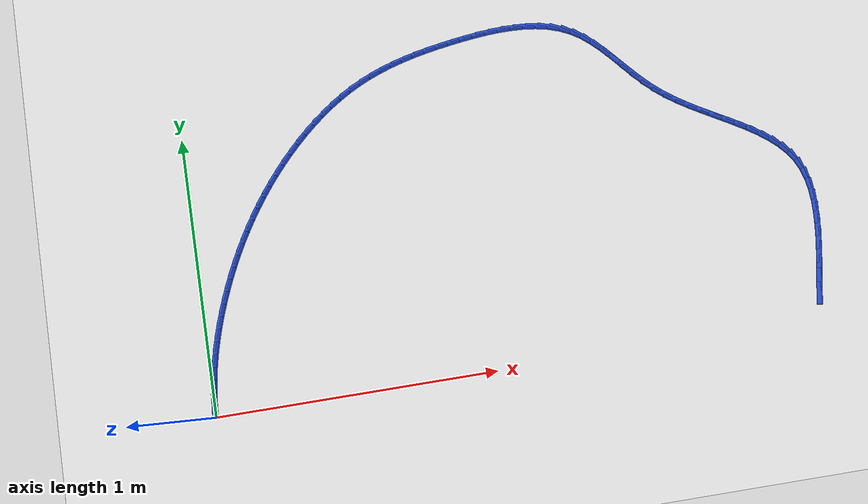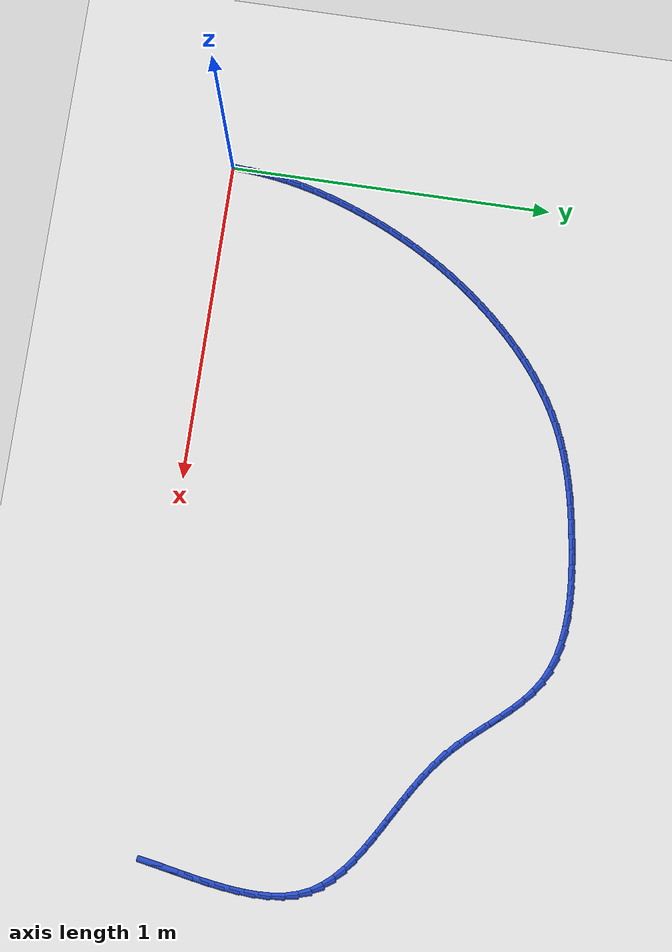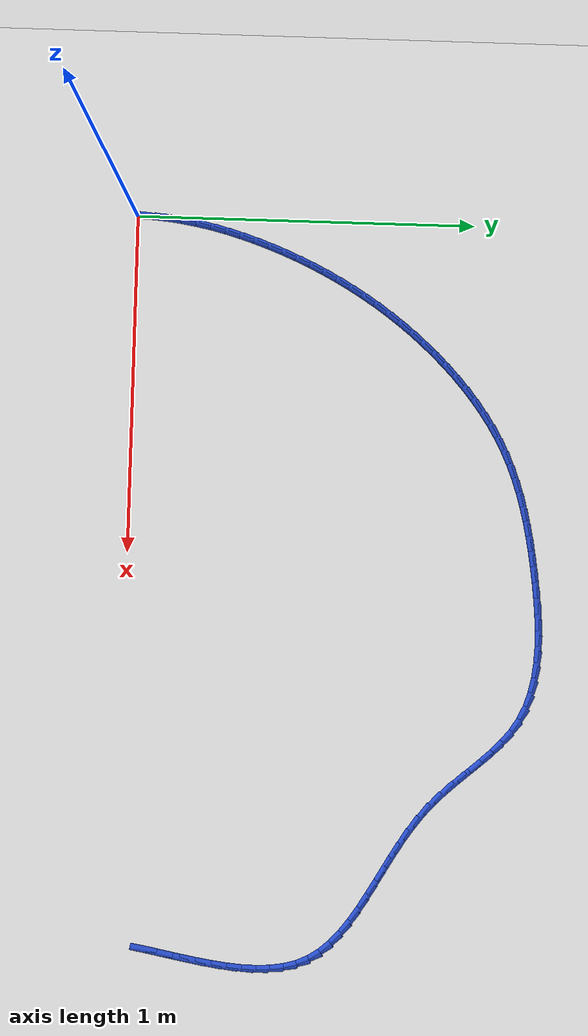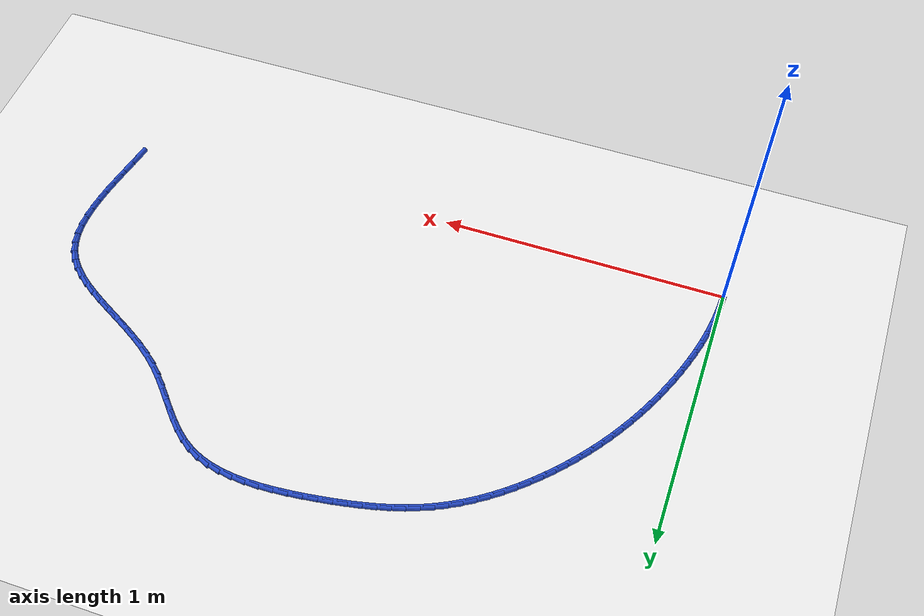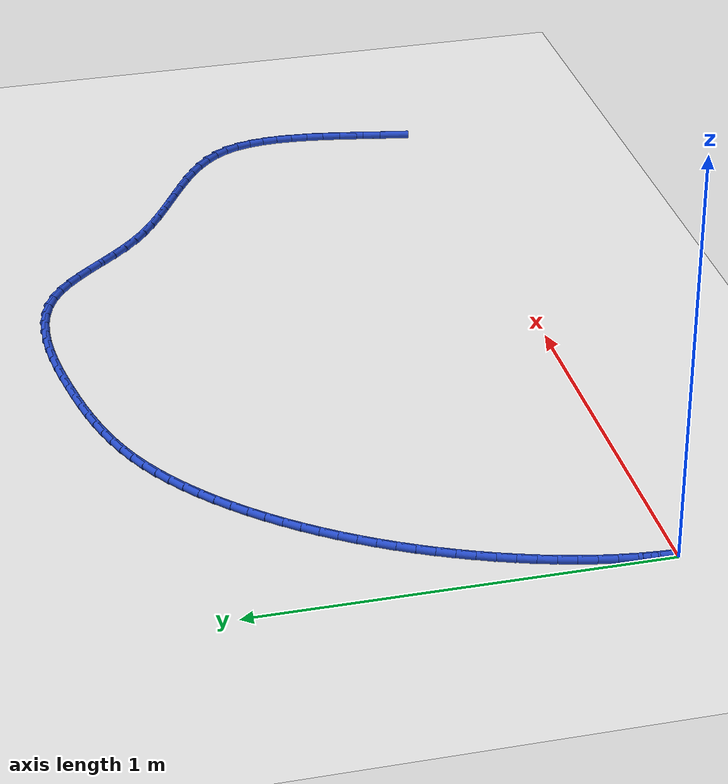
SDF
<sdf version="1.6">
 <world name="default">
  <model name="ground_plane">
   <static>1</static>
   <link name="link">
    <collision name="collision">
     <geometry><plane><normal>0 0 1</normal><size>100 100</size></plane></geometry>
     <surface><friction><ode><mu>100</mu><mu2>50</mu2></ode></friction></surface>
    </collision>
    <visual name="visual">
     <cast_shadows>0</cast_shadows>
     <geometry><plane><normal>0 0 1</normal><size>100 100</size></plane></geometry>
     <material>
      <script><uri>file://media/materials/scripts/gazebo.material</uri><name>Gazebo/WhiteGlow</name></script>
     </material>
    </visual>
   </link>
  </model>
  <model name="line">
   <link name="link_1">
    <pose>0.0018986274783184306 0.045270862564657524 0.01 0 1.57 1.4842349211723058</pose>
    <collision name="collision">
     <geometry><cylinder><radius>0.01</radius><length>0.08</length></cylinder></geometry>
    </collision>
    <visual name="visual">
     <material>
      <script><name>Gazebo/Blue</name><uri>file://media/materials/scripts/gazebo.material</uri></script>
     </material>
     <geometry><cylinder><radius>0.01</radius><length>0.08</length></cylinder></geometry>
    </visual>
   </link>
   <link name="link_2">
    <pose>0.005796107628394718 0.090183959916255 0.01 0 1.57 1.4415043445787512</pose>
    <collision name="collision">
     <geometry><cylinder><radius>0.01</radius><length>0.08</length></cylinder></geometry>
    </collision>
    <visual name="visual">
     <material>
      <script><name>Gazebo/Blue</name><uri>file://media/materials/scripts/gazebo.material</uri></script>
     </material>
     <geometry><cylinder><radius>0.01</radius><length>0.08</length></cylinder></geometry>
    </visual>
   </link>
   <link name="link_3">
    <pose>0.01158838810931956 0.13473404697442215 0.01 0 1.57 1.400820167385126</pose>
    <collision name="collision">
     <geometry><cylinder><radius>0.01</radius><length>0.08</length></cylinder></geometry>
    </collision>
    <visual name="visual">
     <material>
      <script><name>Gazebo/Blue</name><uri>file://media/materials/scripts/gazebo.material</uri></script>
     </material>
     <geometry><cylinder><radius>0.01</radius><length>0.08</length></cylinder></geometry>
    </visual>
   </link>
   <link name="link_4">
    <pose>0.01917141658018367 0.1789158786587886 0.01 0 1.57 1.3622748014016555</pose>
    <collision name="collision">
     <geometry><cylinder><radius>0.01</radius><length>0.08</length></cylinder></geometry>
    </collision>
    <visual name="visual">
     <material>
      <script><name>Gazebo/Blue</name><uri>file://media/materials/scripts/gazebo.material</uri></script>
     </material>
     <geometry><cylinder><radius>0.01</radius><length>0.08</length></cylinder></geometry>
    </visual>
   </link>
   <link name="link_5">
    <pose>0.028441140700077774 0.22272420988898411 0.01 0 1.57 1.325926651619005</pose>
    <collision name="collision">
     <geometry><cylinder><radius>0.01</radius><length>0.08</length></cylinder></geometry>
    </collision>
    <visual name="visual">
     <material>
      <script><name>Gazebo/Blue</name><uri>file://media/materials/scripts/gazebo.material</uri></script>
     </material>
     <geometry><cylinder><radius>0.01</radius><length>0.08</length></cylinder></geometry>
    </visual>
   </link>
   <link name="link_6">
    <pose>0.039293508128092576 0.26615379558463836 0.01 0 1.57 1.2918048528921524</pose>
    <collision name="collision">
     <geometry><cylinder><radius>0.01</radius><length>0.08</length></cylinder></geometry>
    </collision>
    <visual name="visual">
     <material>
      <script><name>Gazebo/Blue</name><uri>file://media/materials/scripts/gazebo.material</uri></script>
     </material>
     <geometry><cylinder><radius>0.01</radius><length>0.08</length></cylinder></geometry>
    </visual>
   </link>
   <link name="link_7">
    <pose>0.051624466523318806 0.30919939066538094 0.01 0 1.57 1.2599143963918624</pose>
    <collision name="collision">
     <geometry><cylinder><radius>0.01</radius><length>0.08</length></cylinder></geometry>
    </collision>
    <visual name="visual">
     <material>
      <script><name>Gazebo/Blue</name><uri>file://media/materials/scripts/gazebo.material</uri></script>
     </material>
     <geometry><cylinder><radius>0.01</radius><length>0.08</length></cylinder></geometry>
    </visual>
   </link>
   <link name="link_8">
    <pose>0.06532996354484717 0.3518557500508417 0.01 0 1.57 1.2302329889675874</pose>
    <collision name="collision">
     <geometry><cylinder><radius>0.01</radius><length>0.08</length></cylinder></geometry>
    </collision>
    <visual name="visual">
     <material>
      <script><name>Gazebo/Blue</name><uri>file://media/materials/scripts/gazebo.material</uri></script>
     </material>
     <geometry><cylinder><radius>0.01</radius><length>0.08</length></cylinder></geometry>
    </visual>
   </link>
   <link name="link_9">
    <pose>0.080306294159341 0.394117497454117 0.01 0 1.57 1.201915558746725</pose>
    <collision name="collision">
     <geometry><cylinder><radius>0.01</radius><length>0.08</length></cylinder></geometry>
    </collision>
    <visual name="visual">
     <material>
      <script><name>Gazebo/Blue</name><uri>file://media/materials/scripts/gazebo.material</uri></script>
     </material>
     <geometry><cylinder><radius>0.01</radius><length>0.08</length></cylinder></geometry>
    </visual>
   </link>
   <link name="link_10">
    <pose>0.09648404263138836 0.43596630271035763 0.01 0 1.57 1.1734323717533908</pose>
    <collision name="collision">
     <geometry><cylinder><radius>0.01</radius><length>0.08</length></cylinder></geometry>
    </collision>
    <visual name="visual">
     <material>
      <script><name>Gazebo/Blue</name><uri>file://media/materials/scripts/gazebo.material</uri></script>
     </material>
     <geometry><cylinder><radius>0.01</radius><length>0.08</length></cylinder></geometry>
    </visual>
   </link>
   <link name="link_11">
    <pose>0.1138565870593402 0.4773601132775439 0.01 0 1.57 1.1445915852036095</pose>
    <collision name="collision">
     <geometry><cylinder><radius>0.01</radius><length>0.08</length></cylinder></geometry>
    </collision>
    <visual name="visual">
     <material>
      <script><name>Gazebo/Blue</name><uri>file://media/materials/scripts/gazebo.material</uri></script>
     </material>
     <geometry><cylinder><radius>0.01</radius><length>0.08</length></cylinder></geometry>
    </visual>
   </link>
   <link name="link_12">
    <pose>0.13242401652353475 0.5182543413257723 0.01 0 1.57 1.1153630447372038</pose>
    <collision name="collision">
     <geometry><cylinder><radius>0.01</radius><length>0.08</length></cylinder></geometry>
    </collision>
    <visual name="visual">
     <material>
      <script><name>Gazebo/Blue</name><uri>file://media/materials/scripts/gazebo.material</uri></script>
     </material>
     <geometry><cylinder><radius>0.01</radius><length>0.08</length></cylinder></geometry>
    </visual>
   </link>
   <link name="link_13">
    <pose>0.15218642010431016 0.558604399025139 0.01 0 1.57 1.0857185533105422</pose>
    <collision name="collision">
     <geometry><cylinder><radius>0.01</radius><length>0.08</length></cylinder></geometry>
    </collision>
    <visual name="visual">
     <material>
      <script><name>Gazebo/Blue</name><uri>file://media/materials/scripts/gazebo.material</uri></script>
     </material>
     <geometry><cylinder><radius>0.01</radius><length>0.08</length></cylinder></geometry>
    </visual>
   </link>
   <link name="link_14">
    <pose>0.17314388688200485 0.5983656985457407 0.01 0 1.57 1.0556321395603914</pose>
    <collision name="collision">
     <geometry><cylinder><radius>0.01</radius><length>0.08</length></cylinder></geometry>
    </collision>
    <visual name="visual">
     <material>
      <script><name>Gazebo/Blue</name><uri>file://media/materials/scripts/gazebo.material</uri></script>
     </material>
     <geometry><cylinder><radius>0.01</radius><length>0.08</length></cylinder></geometry>
    </visual>
   </link>
   <link name="link_15">
    <pose>0.1952965059369569 0.6374936520576736 0.01 0 1.57 1.0250803586333848</pose>
    <collision name="collision">
     <geometry><cylinder><radius>0.01</radius><length>0.08</length></cylinder></geometry>
    </collision>
    <visual name="visual">
     <material>
      <script><name>Gazebo/Blue</name><uri>file://media/materials/scripts/gazebo.material</uri></script>
     </material>
     <geometry><cylinder><radius>0.01</radius><length>0.08</length></cylinder></geometry>
    </visual>
   </link>
   <link name="link_16">
    <pose>0.21864436634950482 0.6759436717310348 0.01 0 1.57 0.9940426239044867</pose>
    <collision name="collision">
     <geometry><cylinder><radius>0.01</radius><length>0.08</length></cylinder></geometry>
    </collision>
    <visual name="visual">
     <material>
      <script><name>Gazebo/Blue</name><uri>file://media/materials/scripts/gazebo.material</uri></script>
     </material>
     <geometry><cylinder><radius>0.01</radius><length>0.08</length></cylinder></geometry>
    </visual>
   </link>
   <link name="link_17">
    <pose>0.24318755719998664 0.7136711697359202 0.01 0 1.57 0.9625015665755179</pose>
    <collision name="collision">
     <geometry><cylinder><radius>0.01</radius><length>0.08</length></cylinder></geometry>
    </collision>
    <visual name="visual">
     <material>
      <script><name>Gazebo/Blue</name><uri>file://media/materials/scripts/gazebo.material</uri></script>
     </material>
     <geometry><cylinder><radius>0.01</radius><length>0.08</length></cylinder></geometry>
    </visual>
   </link>
   <link name="link_18">
    <pose>0.26892616756874066 0.7506315582424266 0.01 0 1.57 0.9304434184569393</pose>
    <collision name="collision">
     <geometry><cylinder><radius>0.01</radius><length>0.08</length></cylinder></geometry>
    </collision>
    <visual name="visual">
     <material>
      <script><name>Gazebo/Blue</name><uri>file://media/materials/scripts/gazebo.material</uri></script>
     </material>
     <geometry><cylinder><radius>0.01</radius><length>0.08</length></cylinder></geometry>
    </visual>
   </link>
   <link name="link_19">
    <pose>0.2958602865361052 0.7867802494206502 0.01 0 1.57 0.8978584113109714</pose>
    <collision name="collision">
     <geometry><cylinder><radius>0.01</radius><length>0.08</length></cylinder></geometry>
    </collision>
    <visual name="visual">
     <material>
      <script><name>Gazebo/Blue</name><uri>file://media/materials/scripts/gazebo.material</uri></script>
     </material>
     <geometry><cylinder><radius>0.01</radius><length>0.08</length></cylinder></geometry>
    </visual>
   </link>
   <link name="link_20">
    <pose>0.3239900031824186 0.8220726554406879 0.01 0 1.57 0.8647411840159512</pose>
    <collision name="collision">
     <geometry><cylinder><radius>0.01</radius><length>0.08</length></cylinder></geometry>
    </collision>
    <visual name="visual">
     <material>
      <script><name>Gazebo/Blue</name><uri>file://media/materials/scripts/gazebo.material</uri></script>
     </material>
     <geometry><cylinder><radius>0.01</radius><length>0.08</length></cylinder></geometry>
    </visual>
   </link>
   <link name="link_21">
    <pose>0.35331540658801897 0.8564641884726361 0.01 0 1.57 0.8310911865787765</pose>
    <collision name="collision">
     <geometry><cylinder><radius>0.01</radius><length>0.08</length></cylinder></geometry>
    </collision>
    <visual name="visual">
     <material>
      <script><name>Gazebo/Blue</name><uri>file://media/materials/scripts/gazebo.material</uri></script>
     </material>
     <geometry><cylinder><radius>0.01</radius><length>0.08</length></cylinder></geometry>
    </visual>
   </link>
   <link name="link_22">
    <pose>0.38383658583324465 0.889910260686591 0.01 0 1.57 0.7966848038473127</pose>
    <collision name="collision">
     <geometry><cylinder><radius>0.01</radius><length>0.08</length></cylinder></geometry>
    </collision>
    <visual name="visual">
     <material>
      <script><name>Gazebo/Blue</name><uri>file://media/materials/scripts/gazebo.material</uri></script>
     </material>
     <geometry><cylinder><radius>0.01</radius><length>0.08</length></cylinder></geometry>
    </visual>
   </link>
   <link name="link_23">
    <pose>0.41554763064454986 0.9223453303728348 0.01 0 1.57 0.7604444711862371</pose>
    <collision name="collision">
     <geometry><cylinder><radius>0.01</radius><length>0.08</length></cylinder></geometry>
    </collision>
    <visual name="visual">
     <material>
      <script><name>Gazebo/Blue</name><uri>file://media/materials/scripts/gazebo.material</uri></script>
     </material>
     <geometry><cylinder><radius>0.01</radius><length>0.08</length></cylinder></geometry>
    </visual>
   </link>
   <link name="link_24">
    <pose>0.4484168244058946 0.953613722282348 0.01 0 1.57 0.7218498556387832</pose>
    <collision name="collision">
     <geometry><cylinder><radius>0.01</radius><length>0.08</length></cylinder></geometry>
    </collision>
    <visual name="visual">
     <material>
      <script><name>Gazebo/Blue</name><uri>file://media/materials/scripts/gazebo.material</uri></script>
     </material>
     <geometry><cylinder><radius>0.01</radius><length>0.08</length></cylinder></geometry>
    </visual>
   </link>
   <link name="link_25">
    <pose>0.4824055131075488 0.9835355310045948 0.01 0 1.57 0.6806194166021386</pose>
    <collision name="collision">
     <geometry><cylinder><radius>0.01</radius><length>0.08</length></cylinder></geometry>
    </collision>
    <visual name="visual">
     <material>
      <script><name>Gazebo/Blue</name><uri>file://media/materials/scripts/gazebo.material</uri></script>
     </material>
     <geometry><cylinder><radius>0.01</radius><length>0.08</length></cylinder></geometry>
    </visual>
   </link>
   <link name="link_26">
    <pose>0.5174750426480814 1.0119308508087546 0.01 0 1.57 0.6364662482229534</pose>
    <collision name="collision">
     <geometry><cylinder><radius>0.01</radius><length>0.08</length></cylinder></geometry>
    </collision>
    <visual name="visual">
     <material>
      <script><name>Gazebo/Blue</name><uri>file://media/materials/scripts/gazebo.material</uri></script>
     </material>
     <geometry><cylinder><radius>0.01</radius><length>0.08</length></cylinder></geometry>
    </visual>
   </link>
   <link name="link_27">
    <pose>0.5535867589260608 1.0386197759640066 0.01 0 1.57 0.5891046559166444</pose>
    <collision name="collision">
     <geometry><cylinder><radius>0.01</radius><length>0.08</length></cylinder></geometry>
    </collision>
    <visual name="visual">
     <material>
      <script><name>Gazebo/Blue</name><uri>file://media/materials/scripts/gazebo.material</uri></script>
     </material>
     <geometry><cylinder><radius>0.01</radius><length>0.08</length></cylinder></geometry>
    </visual>
   </link>
   <link name="link_28">
    <pose>0.5907020078400552 1.0634224007395292 0.01 0 1.57 0.5382606959549727</pose>
    <collision name="collision">
     <geometry><cylinder><radius>0.01</radius><length>0.08</length></cylinder></geometry>
    </collision>
    <visual name="visual">
     <material>
      <script><name>Gazebo/Blue</name><uri>file://media/materials/scripts/gazebo.material</uri></script>
     </material>
     <geometry><cylinder><radius>0.01</radius><length>0.08</length></cylinder></geometry>
    </visual>
   </link>
   <link name="link_29">
    <pose>0.6287821352886335 1.0861588194045018 0.01 0 1.57 0.4837081633255312</pose>
    <collision name="collision">
     <geometry><cylinder><radius>0.01</radius><length>0.08</length></cylinder></geometry>
    </collision>
    <visual name="visual">
     <material>
      <script><name>Gazebo/Blue</name><uri>file://media/materials/scripts/gazebo.material</uri></script>
     </material>
     <geometry><cylinder><radius>0.01</radius><length>0.08</length></cylinder></geometry>
    </visual>
   </link>
   <link name="link_30">
    <pose>0.6677885769691463 1.1066501978492853 0.01 0 1.57 0.4276677276523153</pose>
    <collision name="collision">
     <geometry><cylinder><radius>0.01</radius><length>0.08</length></cylinder></geometry>
    </collision>
    <visual name="visual">
     <material>
      <script><name>Gazebo/Blue</name><uri>file://media/materials/scripts/gazebo.material</uri></script>
     </material>
     <geometry><cylinder><radius>0.01</radius><length>0.08</length></cylinder></geometry>
    </visual>
   </link>
   <link name="link_31">
    <pose>0.7076929026458838 1.1248386376881985 0.01 0 1.57 0.3750144893814631</pose>
    <collision name="collision">
     <geometry><cylinder><radius>0.01</radius><length>0.08</length></cylinder></geometry>
    </collision>
    <visual name="visual">
     <material>
      <script><name>Gazebo/Blue</name><uri>file://media/materials/scripts/gazebo.material</uri></script>
     </material>
     <geometry><cylinder><radius>0.01</radius><length>0.08</length></cylinder></geometry>
    </visual>
   </link>
   <link name="link_32">
    <pose>0.7484859822427457 1.140896560582712 0.01 0 1.57 0.3267963278468307</pose>
    <collision name="collision">
     <geometry><cylinder><radius>0.01</radius><length>0.08</length></cylinder></geometry>
    </collision>
    <visual name="visual">
     <material>
      <script><name>Gazebo/Blue</name><uri>file://media/materials/scripts/gazebo.material</uri></script>
     </material>
     <geometry><cylinder><radius>0.01</radius><length>0.08</length></cylinder></geometry>
    </visual>
   </link>
   <link name="link_33">
    <pose>0.7901608507896076 1.1550222256650946 0.01 0 1.57 0.28338988487106853</pose>
    <collision name="collision">
     <geometry><cylinder><radius>0.01</radius><length>0.08</length></cylinder></geometry>
    </collision>
    <visual name="visual">
     <material>
      <script><name>Gazebo/Blue</name><uri>file://media/materials/scripts/gazebo.material</uri></script>
     </material>
     <geometry><cylinder><radius>0.01</radius><length>0.08</length></cylinder></geometry>
    </visual>
   </link>
   <link name="link_34">
    <pose>0.8327105433163452 1.1674138920676156 0.01 0 1.57 0.2450120236223205</pose>
    <collision name="collision">
     <geometry><cylinder><radius>0.01</radius><length>0.08</length></cylinder></geometry>
    </collision>
    <visual name="visual">
     <material>
      <script><name>Gazebo/Blue</name><uri>file://media/materials/scripts/gazebo.material</uri></script>
     </material>
     <geometry><cylinder><radius>0.01</radius><length>0.08</length></cylinder></geometry>
    </visual>
   </link>
   <link name="link_35">
    <pose>0.8761280948528342 1.1782698189225438 0.01 0 1.57 0.2117455207977764</pose>
    <collision name="collision">
     <geometry><cylinder><radius>0.01</radius><length>0.08</length></cylinder></geometry>
    </collision>
    <visual name="visual">
     <material>
      <script><name>Gazebo/Blue</name><uri>file://media/materials/scripts/gazebo.material</uri></script>
     </material>
     <geometry><cylinder><radius>0.01</radius><length>0.08</length></cylinder></geometry>
    </visual>
   </link>
   <link name="link_36">
    <pose>0.9204065404289501 1.1877882653621483 0.01 0 1.57 0.18356874632697723</pose>
    <collision name="collision">
     <geometry><cylinder><radius>0.01</radius><length>0.08</length></cylinder></geometry>
    </collision>
    <visual name="visual">
     <material>
      <script><name>Gazebo/Blue</name><uri>file://media/materials/scripts/gazebo.material</uri></script>
     </material>
     <geometry><cylinder><radius>0.01</radius><length>0.08</length></cylinder></geometry>
    </visual>
   </link>
   <link name="link_37">
    <pose>0.9655389150745686 1.1961674905186972 0.01 0 1.57 0.16038453201115208</pose>
    <collision name="collision">
     <geometry><cylinder><radius>0.01</radius><length>0.08</length></cylinder></geometry>
    </collision>
    <visual name="visual">
     <material>
      <script><name>Gazebo/Blue</name><uri>file://media/materials/scripts/gazebo.material</uri></script>
     </material>
     <geometry><cylinder><radius>0.01</radius><length>0.08</length></cylinder></geometry>
    </visual>
   </link>
   <link name="link_38">
    <pose>1.011518253819565 1.2036057535244598 0.01 0 1.57 0.14166314754316453</pose>
    <collision name="collision">
     <geometry><cylinder><radius>0.01</radius><length>0.08</length></cylinder></geometry>
    </collision>
    <visual name="visual">
     <material>
      <script><name>Gazebo/Blue</name><uri>file://media/materials/scripts/gazebo.material</uri></script>
     </material>
     <geometry><cylinder><radius>0.01</radius><length>0.08</length></cylinder></geometry>
    </visual>
   </link>
   <link name="link_39">
    <pose>1.0583256229354534 1.2102813488996835 0.01 0 1.57 0.12074123063330013</pose>
    <collision name="collision">
     <geometry><cylinder><radius>0.01</radius><length>0.08</length></cylinder></geometry>
    </collision>
    <visual name="visual">
     <material>
      <script><name>Gazebo/Blue</name><uri>file://media/materials/scripts/gazebo.material</uri></script>
     </material>
     <geometry><cylinder><radius>0.01</radius><length>0.08</length></cylinder></geometry>
    </visual>
   </link>
   <link name="link_40">
    <pose>1.1057391771114726 1.2160341023867947 0.01 0 1.57 0.09185437337763562</pose>
    <collision name="collision">
     <geometry><cylinder><radius>0.01</radius><length>0.08</length></cylinder></geometry>
    </collision>
    <visual name="visual">
     <material>
      <script><name>Gazebo/Blue</name><uri>file://media/materials/scripts/gazebo.material</uri></script>
     </material>
     <geometry><cylinder><radius>0.01</radius><length>0.08</length></cylinder></geometry>
    </visual>
   </link>
   <link name="link_41">
    <pose>1.1533677111331038 1.2204213371771335 0.01 0 1.57 0.054120727202297464</pose>
    <collision name="collision">
     <geometry><cylinder><radius>0.01</radius><length>0.08</length></cylinder></geometry>
    </collision>
    <visual name="visual">
     <material>
      <script><name>Gazebo/Blue</name><uri>file://media/materials/scripts/gazebo.material</uri></script>
     </material>
     <geometry><cylinder><radius>0.01</radius><length>0.08</length></cylinder></geometry>
    </visual>
   </link>
   <link name="link_42">
    <pose>1.2008148301574335 1.2229917198483584 0.01 0 1.57 0.006447565527677258</pose>
    <collision name="collision">
     <geometry><cylinder><radius>0.01</radius><length>0.08</length></cylinder></geometry>
    </collision>
    <visual name="visual">
     <material>
      <script><name>Gazebo/Blue</name><uri>file://media/materials/scripts/gazebo.material</uri></script>
     </material>
     <geometry><cylinder><radius>0.01</radius><length>0.08</length></cylinder></geometry>
    </visual>
   </link>
   <link name="link_43">
    <pose>1.2476841393415485 1.2232939169781274 0.01 0 1.57 -0.05262195616733427</pose>
    <collision name="collision">
     <geometry><cylinder><radius>0.01</radius><length>0.08</length></cylinder></geometry>
    </collision>
    <visual name="visual">
     <material>
      <script><name>Gazebo/Blue</name><uri>file://media/materials/scripts/gazebo.material</uri></script>
     </material>
     <geometry><cylinder><radius>0.01</radius><length>0.08</length></cylinder></geometry>
    </visual>
   </link>
   <link name="link_44">
    <pose>1.2935792438425382 1.220876595144099 0.01 0 1.57 -0.12485498532663875</pose>
    <collision name="collision">
     <geometry><cylinder><radius>0.01</radius><length>0.08</length></cylinder></geometry>
    </collision>
    <visual name="visual">
     <material>
      <script><name>Gazebo/Blue</name><uri>file://media/materials/scripts/gazebo.material</uri></script>
     </material>
     <geometry><cylinder><radius>0.01</radius><length>0.08</length></cylinder></geometry>
    </visual>
   </link>
   <link name="link_45">
    <pose>1.3381037488174883 1.2152884209239316 0.01 0 1.57 -0.2121672224260136</pose>
    <collision name="collision">
     <geometry><cylinder><radius>0.01</radius><length>0.08</length></cylinder></geometry>
    </collision>
    <visual name="visual">
     <material>
      <script><name>Gazebo/Blue</name><uri>file://media/materials/scripts/gazebo.material</uri></script>
     </material>
     <geometry><cylinder><radius>0.01</radius><length>0.08</length></cylinder></geometry>
    </visual>
   </link>
   <link name="link_46">
    <pose>1.3808612594234875 1.2060780608952835 0.01 0 1.57 -0.3162534285574934</pose>
    <collision name="collision">
     <geometry><cylinder><radius>0.01</radius><length>0.08</length></cylinder></geometry>
    </collision>
    <visual name="visual">
     <material>
      <script><name>Gazebo/Blue</name><uri>file://media/materials/scripts/gazebo.material</uri></script>
     </material>
     <geometry><cylinder><radius>0.01</radius><length>0.08</length></cylinder></geometry>
    </visual>
   </link>
   <link name="link_47">
    <pose>1.4214553808176222 1.192794181635813 0.01 0 1.57 -0.43790829810327386</pose>
    <collision name="collision">
     <geometry><cylinder><radius>0.01</radius><length>0.08</length></cylinder></geometry>
    </collision>
    <visual name="visual">
     <material>
      <script><name>Gazebo/Blue</name><uri>file://media/materials/scripts/gazebo.material</uri></script>
     </material>
     <geometry><cylinder><radius>0.01</radius><length>0.08</length></cylinder></geometry>
    </visual>
   </link>
   <link name="link_48">
    <pose>1.4594897181569801 1.1749854497231775 0.01 0 1.57 -0.5723241459038471</pose>
    <collision name="collision">
     <geometry><cylinder><radius>0.01</radius><length>0.08</length></cylinder></geometry>
    </collision>
    <visual name="visual">
     <material>
      <script><name>Gazebo/Blue</name><uri>file://media/materials/scripts/gazebo.material</uri></script>
     </material>
     <geometry><cylinder><radius>0.01</radius><length>0.08</length></cylinder></geometry>
    </visual>
   </link>
   <link name="link_49">
    <pose>1.4946665700119324 1.152322676758436 0.01 0 1.57 -0.6892413904597401</pose>
    <collision name="collision">
     <geometry><cylinder><radius>0.01</radius><length>0.08</length></cylinder></geometry>
    </collision>
    <visual name="visual">
     <material>
      <script><name>Gazebo/Blue</name><uri>file://media/materials/scripts/gazebo.material</uri></script>
     </material>
     <geometry><cylinder><radius>0.01</radius><length>0.08</length></cylinder></geometry>
    </visual>
   </link>
   <link name="link_50">
    <pose>1.5273955115844915 1.1253520146297842 0.01 0 1.57 -0.7748260927825578</pose>
    <collision name="collision">
     <geometry><cylinder><radius>0.01</radius><length>0.08</length></cylinder></geometry>
    </collision>
    <visual name="visual">
     <material>
      <script><name>Gazebo/Blue</name><uri>file://media/materials/scripts/gazebo.material</uri></script>
     </material>
     <geometry><cylinder><radius>0.01</radius><length>0.08</length></cylinder></geometry>
    </visual>
   </link>
   <link name="link_51">
    <pose>1.558394664686706 1.0950014789349503 0.01 0 1.57 -0.8301533373716767</pose>
    <collision name="collision">
     <geometry><cylinder><radius>0.01</radius><length>0.08</length></cylinder></geometry>
    </collision>
    <visual name="visual">
     <material>
      <script><name>Gazebo/Blue</name><uri>file://media/materials/scripts/gazebo.material</uri></script>
     </material>
     <geometry><cylinder><radius>0.01</radius><length>0.08</length></cylinder></geometry>
    </visual>
   </link>
   <link name="link_52">
    <pose>1.5883834342252279 1.0622006732562608 0.01 0 1.57 -0.8574962585744776</pose>
    <collision name="collision">
     <geometry><cylinder><radius>0.01</radius><length>0.08</length></cylinder></geometry>
    </collision>
    <visual name="visual">
     <material>
      <script><name>Gazebo/Blue</name><uri>file://media/materials/scripts/gazebo.material</uri></script>
     </material>
     <geometry><cylinder><radius>0.01</radius><length>0.08</length></cylinder></geometry>
    </visual>
   </link>
   <link name="link_53">
    <pose>1.6180812251067078 1.0278792011760416 0.01 0 1.57 -0.8588575254970319</pose>
    <collision name="collision">
     <geometry><cylinder><radius>0.01</radius><length>0.08</length></cylinder></geometry>
    </collision>
    <visual name="visual">
     <material>
      <script><name>Gazebo/Blue</name><uri>file://media/materials/scripts/gazebo.material</uri></script>
     </material>
     <geometry><cylinder><radius>0.01</radius><length>0.08</length></cylinder></geometry>
    </visual>
   </link>
   <link name="link_54">
    <pose>1.6482074422377968 0.9929666662766191 0.01 0 1.57 -0.8354708354467425</pose>
    <collision name="collision">
     <geometry><cylinder><radius>0.01</radius><length>0.08</length></cylinder></geometry>
    </collision>
    <visual name="visual">
     <material>
      <script><name>Gazebo/Blue</name><uri>file://media/materials/scripts/gazebo.material</uri></script>
     </material>
     <geometry><cylinder><radius>0.01</radius><length>0.08</length></cylinder></geometry>
    </visual>
   </link>
   <link name="link_55">
    <pose>1.6794814905251454 0.9583926721403192 0.01 0 1.57 -0.7878747954787787</pose>
    <collision name="collision">
     <geometry><cylinder><radius>0.01</radius><length>0.08</length></cylinder></geometry>
    </collision>
    <visual name="visual">
     <material>
      <script><name>Gazebo/Blue</name><uri>file://media/materials/scripts/gazebo.material</uri></script>
     </material>
     <geometry><cylinder><radius>0.01</radius><length>0.08</length></cylinder></geometry>
    </visual>
   </link>
   <link name="link_56">
    <pose>1.712622774875405 0.9250868223494677 0.01 0 1.57 -0.7176364242600842</pose>
    <collision name="collision">
     <geometry><cylinder><radius>0.01</radius><length>0.08</length></cylinder></geometry>
    </collision>
    <visual name="visual">
     <material>
      <script><name>Gazebo/Blue</name><uri>file://media/materials/scripts/gazebo.material</uri></script>
     </material>
     <geometry><cylinder><radius>0.01</radius><length>0.08</length></cylinder></geometry>
    </visual>
   </link>
   <link name="link_57">
    <pose>1.7483084609158623 0.8939369728865907 0.01 0 1.57 -0.6465781644613865</pose>
    <collision name="collision">
     <geometry><cylinder><radius>0.01</radius><length>0.08</length></cylinder></geometry>
    </collision>
    <visual name="visual">
     <material>
      <script><name>Gazebo/Blue</name><uri>file://media/materials/scripts/gazebo.material</uri></script>
     </material>
     <geometry><cylinder><radius>0.01</radius><length>0.08</length></cylinder></geometry>
    </visual>
   </link>
   <link name="link_58">
    <pose>1.7864917825711828 0.8651154748425918 0.01 0 1.57 -0.5921116740411578</pose>
    <collision name="collision">
     <geometry><cylinder><radius>0.01</radius><length>0.08</length></cylinder></geometry>
    </collision>
    <visual name="visual">
     <material>
      <script><name>Gazebo/Blue</name><uri>file://media/materials/scripts/gazebo.material</uri></script>
     </material>
     <geometry><cylinder><radius>0.01</radius><length>0.08</length></cylinder></geometry>
    </visual>
   </link>
   <link name="link_59">
    <pose>1.8265175935123321 0.8381933808075479 0.01 0 1.57 -0.553765520842661</pose>
    <collision name="collision">
     <geometry><cylinder><radius>0.01</radius><length>0.08</length></cylinder></geometry>
    </collision>
    <visual name="visual">
     <material>
      <script><name>Gazebo/Blue</name><uri>file://media/materials/scripts/gazebo.material</uri></script>
     </material>
     <geometry><cylinder><radius>0.01</radius><length>0.08</length></cylinder></geometry>
    </visual>
   </link>
   <link name="link_60">
    <pose>1.867711837717998 0.8127230537944989 0.01 0 1.57 -0.530716203560321</pose>
    <collision name="collision">
     <geometry><cylinder><radius>0.01</radius><length>0.08</length></cylinder></geometry>
    </collision>
    <visual name="visual">
     <material>
      <script><name>Gazebo/Blue</name><uri>file://media/materials/scripts/gazebo.material</uri></script>
     </material>
     <geometry><cylinder><radius>0.01</radius><length>0.08</length></cylinder></geometry>
    </visual>
   </link>
   <link name="link_61">
    <pose>1.9094004591668672 0.788256856816485 0.01 0 1.57 -0.5225954841695842</pose>
    <collision name="collision">
     <geometry><cylinder><radius>0.01</radius><length>0.08</length></cylinder></geometry>
    </collision>
    <visual name="visual">
     <material>
      <script><name>Gazebo/Blue</name><uri>file://media/materials/scripts/gazebo.material</uri></script>
     </material>
     <geometry><cylinder><radius>0.01</radius><length>0.08</length></cylinder></geometry>
    </visual>
   </link>
   <link name="link_62">
    <pose>1.9509094018376265 0.7643471528865464 0.01 0 1.57 -0.5296386468588618</pose>
    <collision name="collision">
     <geometry><cylinder><radius>0.01</radius><length>0.08</length></cylinder></geometry>
    </collision>
    <visual name="visual">
     <material>
      <script><name>Gazebo/Blue</name><uri>file://media/materials/scripts/gazebo.material</uri></script>
     </material>
     <geometry><cylinder><radius>0.01</radius><length>0.08</length></cylinder></geometry>
    </visual>
   </link>
   <link name="link_63">
    <pose>1.9915646097089637 0.7405463050177229 0.01 0 1.57 -0.5527890202759829</pose>
    <collision name="collision">
     <geometry><cylinder><radius>0.01</radius><length>0.08</length></cylinder></geometry>
    </collision>
    <visual name="visual">
     <material>
      <script><name>Gazebo/Blue</name><uri>file://media/materials/scripts/gazebo.material</uri></script>
     </material>
     <geometry><cylinder><radius>0.01</radius><length>0.08</length></cylinder></geometry>
    </visual>
   </link>
   <link name="link_64">
    <pose>2.030692026759563 0.7164066762230544 0.01 0 1.57 -0.5937736071963321</pose>
    <collision name="collision">
     <geometry><cylinder><radius>0.01</radius><length>0.08</length></cylinder></geometry>
    </collision>
    <visual name="visual">
     <material>
      <script><name>Gazebo/Blue</name><uri>file://media/materials/scripts/gazebo.material</uri></script>
     </material>
     <geometry><cylinder><radius>0.01</radius><length>0.08</length></cylinder></geometry>
    </visual>
   </link>
   <link name="link_65">
    <pose>2.0676175969681134 0.691480629515581 0.01 0 1.57 -0.6551058435495061</pose>
    <collision name="collision">
     <geometry><cylinder><radius>0.01</radius><length>0.08</length></cylinder></geometry>
    </collision>
    <visual name="visual">
     <material>
      <script><name>Gazebo/Blue</name><uri>file://media/materials/scripts/gazebo.material</uri></script>
     </material>
     <geometry><cylinder><radius>0.01</radius><length>0.08</length></cylinder></geometry>
    </visual>
   </link>
   <link name="link_66">
    <pose>2.1016672643133 0.6653205279083421 0.01 0 1.57 -0.7398717660285408</pose>
    <collision name="collision">
     <geometry><cylinder><radius>0.01</radius><length>0.08</length></cylinder></geometry>
    </collision>
    <visual name="visual">
     <material>
      <script><name>Gazebo/Blue</name><uri>file://media/materials/scripts/gazebo.material</uri></script>
     </material>
     <geometry><cylinder><radius>0.01</radius><length>0.08</length></cylinder></geometry>
    </visual>
   </link>
   <link name="link_67">
    <pose>2.132166972773811 0.6374787344143786 0.01 0 1.57 -0.8510041065952245</pose>
    <collision name="collision">
     <geometry><cylinder><radius>0.01</radius><length>0.08</length></cylinder></geometry>
    </collision>
    <visual name="visual">
     <material>
      <script><name>Gazebo/Blue</name><uri>file://media/materials/scripts/gazebo.material</uri></script>
     </material>
     <geometry><cylinder><radius>0.01</radius><length>0.08</length></cylinder></geometry>
    </visual>
   </link>
   <link name="link_68">
    <pose>2.1584426663283316 0.6075076120467298 0.01 0 1.57 -0.989654811719323</pose>
    <collision name="collision">
     <geometry><cylinder><radius>0.01</radius><length>0.08</length></cylinder></geometry>
    </collision>
    <visual name="visual">
     <material>
      <script><name>Gazebo/Blue</name><uri>file://media/materials/scripts/gazebo.material</uri></script>
     </material>
     <geometry><cylinder><radius>0.01</radius><length>0.08</length></cylinder></geometry>
    </visual>
   </link>
   <link name="link_69">
    <pose>2.1798202889555496 0.5749595238184361 0.01 0 1.57 -1.1491420121735856</pose>
    <collision name="collision">
     <geometry><cylinder><radius>0.01</radius><length>0.08</length></cylinder></geometry>
    </collision>
    <visual name="visual">
     <material>
      <script><name>Gazebo/Blue</name><uri>file://media/materials/scripts/gazebo.material</uri></script>
     </material>
     <geometry><cylinder><radius>0.01</radius><length>0.08</length></cylinder></geometry>
    </visual>
   </link>
   <link name="link_70">
    <pose>2.1957436726043587 0.539460491452467 0.01 0 1.57 -1.2979064980723989</pose>
    <collision name="collision">
     <geometry><cylinder><radius>0.01</radius><length>0.08</length></cylinder></geometry>
    </collision>
    <visual name="visual">
     <material>
      <script><name>Gazebo/Blue</name><uri>file://media/materials/scripts/gazebo.material</uri></script>
     </material>
     <geometry><cylinder><radius>0.01</radius><length>0.08</length></cylinder></geometry>
    </visual>
   </link>
   <link name="link_71">
    <pose>2.206467593739799 0.5011432306693119 0.01 0 1.57 -1.4218601557247084</pose>
    <collision name="collision">
     <geometry><cylinder><radius>0.01</radius><length>0.08</length></cylinder></geometry>
    </collision>
    <visual name="visual">
     <material>
      <script><name>Gazebo/Blue</name><uri>file://media/materials/scripts/gazebo.material</uri></script>
     </material>
     <geometry><cylinder><radius>0.01</radius><length>0.08</length></cylinder></geometry>
    </visual>
   </link>
   <link name="link_72">
    <pose>2.2125879653218 0.4603536059448376 0.01 0 1.57 -1.5215782566373641</pose>
    <collision name="collision">
     <geometry><cylinder><radius>0.01</radius><length>0.08</length></cylinder></geometry>
    </collision>
    <visual name="visual">
     <material>
      <script><name>Gazebo/Blue</name><uri>file://media/materials/scripts/gazebo.material</uri></script>
     </material>
     <geometry><cylinder><radius>0.01</radius><length>0.08</length></cylinder></geometry>
    </visual>
   </link>
   <link name="link_73">
    <pose>2.214701884912023 0.41743822191724467 0.01 0 1.57 1.541820252695111</pose>
    <collision name="collision">
     <geometry><cylinder><radius>0.01</radius><length>0.08</length></cylinder></geometry>
    </collision>
    <visual name="visual">
     <material>
      <script><name>Gazebo/Blue</name><uri>file://media/materials/scripts/gazebo.material</uri></script>
     </material>
     <geometry><cylinder><radius>0.01</radius><length>0.08</length></cylinder></geometry>
    </visual>
   </link>
   <link name="link_74">
    <pose>2.2134064500721298 0.37274368322473533 0.01 0 1.57 1.4819789975958944</pose>
    <collision name="collision">
     <geometry><cylinder><radius>0.01</radius><length>0.08</length></cylinder></geometry>
    </collision>
    <visual name="visual">
     <material>
      <script><name>Gazebo/Blue</name><uri>file://media/materials/scripts/gazebo.material</uri></script>
     </material>
     <geometry><cylinder><radius>0.01</radius><length>0.08</length></cylinder></geometry>
    </visual>
   </link>
   <link name="link_75">
    <pose>2.209298758363781 0.3266165945055105 0.01 0 1.57 1.4376667241030343</pose>
    <collision name="collision">
     <geometry><cylinder><radius>0.01</radius><length>0.08</length></cylinder></geometry>
    </collision>
    <visual name="visual">
     <material>
      <script><name>Gazebo/Blue</name><uri>file://media/materials/scripts/gazebo.material</uri></script>
     </material>
     <geometry><cylinder><radius>0.01</radius><length>0.08</length></cylinder></geometry>
    </visual>
   </link>
   <link name="link_76">
    <pose>2.202975907348639 0.2794035603977712 0.01 0 1.57 1.406685676872138</pose>
    <collision name="collision">
     <geometry><cylinder><radius>0.01</radius><length>0.08</length></cylinder></geometry>
    </collision>
    <visual name="visual">
     <material>
      <script><name>Gazebo/Blue</name><uri>file://media/materials/scripts/gazebo.material</uri></script>
     </material>
     <geometry><cylinder><radius>0.01</radius><length>0.08</length></cylinder></geometry>
    </visual>
   </link>
   <link name="link_77">
    <pose>2.195034994588364 0.2314511855397197 0.01 0 1.57 1.3875039543465235</pose>
    <collision name="collision">
     <geometry><cylinder><radius>0.01</radius><length>0.08</length></cylinder></geometry>
    </collision>
    <visual name="visual">
     <material>
      <script><name>Gazebo/Blue</name><uri>file://media/materials/scripts/gazebo.material</uri></script>
     </material>
     <geometry><cylinder><radius>0.01</radius><length>0.08</length></cylinder></geometry>
    </visual>
   </link>
   <link name="link_78">
    <pose>2.1860731176446184 0.1831060745695563 0.01 0 1.57 1.379219565105602</pose>
    <collision name="collision">
     <geometry><cylinder><radius>0.01</radius><length>0.08</length></cylinder></geometry>
    </collision>
    <visual name="visual">
     <material>
      <script><name>Gazebo/Blue</name><uri>file://media/materials/scripts/gazebo.material</uri></script>
     </material>
     <geometry><cylinder><radius>0.01</radius><length>0.08</length></cylinder></geometry>
    </visual>
   </link>
   <link name="link_79">
    <pose>2.176687374079063 0.1347148321254835 0.01 0 1.57 1.3815242544044717</pose>
    <collision name="collision">
     <geometry><cylinder><radius>0.01</radius><length>0.08</length></cylinder></geometry>
    </collision>
    <visual name="visual">
     <material>
      <script><name>Gazebo/Blue</name><uri>file://media/materials/scripts/gazebo.material</uri></script>
     </material>
     <geometry><cylinder><radius>0.01</radius><length>0.08</length></cylinder></geometry>
    </visual>
   </link>
   <link name="link_80">
    <pose>2.1674748614533597 0.08662406284570212 0.01 0 1.57 1.3941068957278528</pose>
    <collision name="collision">
     <geometry><cylinder><radius>0.01</radius><length>0.08</length></cylinder></geometry>
    </collision>
    <visual name="visual">
     <material>
      <script><name>Gazebo/Blue</name><uri>file://media/materials/scripts/gazebo.material</uri></script>
     </material>
     <geometry><cylinder><radius>0.01</radius><length>0.08</length></cylinder></geometry>
    </visual>
   </link>
   <link name="link_161">
    <pose>0.0019106169719335618 0.045230475377325906 0.01 0 1.57 1.5285796188089391</pose>
    <collision name="collision">
     <geometry><cylinder><radius>0.01</radius><length>0.08</length></cylinder></geometry>
    </collision>
    <visual name="visual">
     <material>
      <script><name>Gazebo/Blue</name><uri>file://media/materials/scripts/gazebo.material</uri></script>
     </material>
     <geometry><cylinder><radius>0.01</radius><length>0.08</length></cylinder></geometry>
    </visual>
   </link>
  </model>
 </world>
</sdf>
